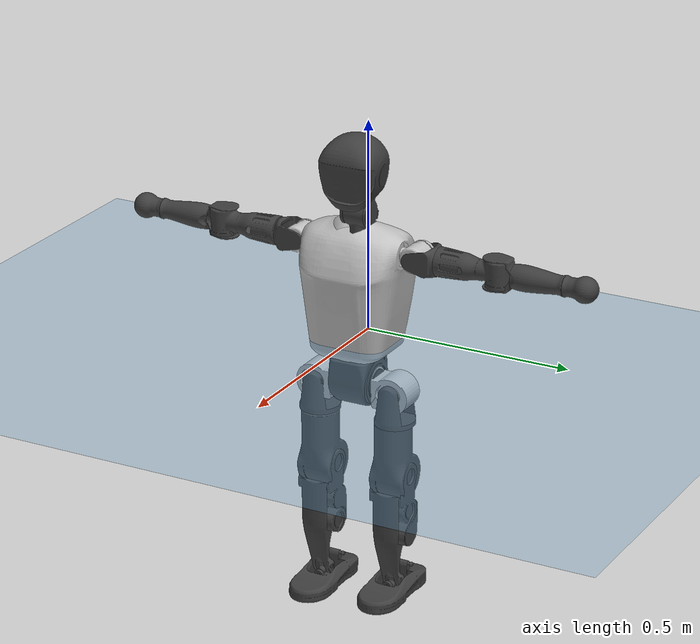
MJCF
<mujoco model="T1">
  <compiler angle="radian" assetdir="assets" balanceinertia="true" inertiafromgeom="false"/>

  <option timestep="0.005" density="1.2" viscosity="2e-05"/>

  <size nkey="1"/>

  <visual>
    <quality shadowsize="8192"/>
    <map shadowclip="0.5"/>
  </visual>

  <default>
    <default class="/">
      <joint armature="0.01" damping="0.01" frictionloss="0.1"/>
      <geom contype="0" conaffinity="0" group="1" solref="-1000 -80"/>
      <site size="0.01 0.005 0.005" group="5"/>
      <general forcelimited="true" biastype="affine" gainprm="25" biasprm="0 -25 -0.6"/>
      <default class="t1">
        <geom rgba="0.25 0.25 0.25 1"/>
        <default class="visual">
          <geom type="mesh" group="2"/>
        </default>
        <default class="collision">
          <geom group="3"/>
        </default>
        <default class="foot">
          <geom size="0.1115 0.05 0.015" type="box" condim="6" group="4" priority="1" solimp="0.015 1 0.015"/>
        </default>
        <default class="reward_collision_sphere">
          <geom group="5" rgba="1 0 0 1"/>
        </default>
      </default>
    </default>
  </default>

  <asset>
    <texture type="skybox" colorspace="auto" name="//unnamed_texture_0" builtin="gradient" rgb1="0.95 0.95 0.95" rgb2="0.95 0.95 0.95" width="100" height="600"/>
    <texture type="2d" colorspace="auto" name="texplane" builtin="checker" rgb1="0.345 0.575 0.748" rgb2="0.345 0.575 0.748" markrgb="1 1 1" width="512" height="512"/>
    <material name="MatPlane" class="/" texture="texplane" texuniform="true" texrepeat="2 2" specular="0.9"/>
    <mesh name="Trunk" class="/" file="Trunk.stl"/>
    <mesh name="H1" class="/" file="H1.stl"/>
    <mesh name="H2" class="/" file="H2.stl"/>
    <mesh name="AL1" class="/" file="AL1.stl"/>
    <mesh name="AL2" class="/" file="AL2.stl"/>
    <mesh name="AL3" class="/" file="AL3.stl"/>
    <mesh name="left_hand_link" class="/" file="left_hand_link.stl"/>
    <mesh name="AR1" class="/" file="AR1.stl"/>
    <mesh name="AR2" class="/" file="AR2.stl"/>
    <mesh name="AR3" class="/" file="AR3.stl"/>
    <mesh name="right_hand_link" class="/" file="right_hand_link.stl"/>
    <mesh name="Waist" class="/" file="Waist.stl"/>
    <mesh name="Hip_Pitch_Left" class="/" file="Hip_Pitch_Left.stl"/>
    <mesh name="Hip_Roll_Left" class="/" file="Hip_Roll_Left.stl"/>
    <mesh name="Hip_Yaw_Left" class="/" file="Hip_Yaw_Left.stl"/>
    <mesh name="Shank_Left" class="/" file="Shank_Left.stl"/>
    <mesh name="Ankle_Cross_Left" class="/" file="Ankle_Cross_Left.stl"/>
    <mesh name="left_foot_link" class="/" file="left_foot_link.stl"/>
    <mesh name="Hip_Pitch_Right" class="/" file="Hip_Pitch_Right.stl"/>
    <mesh name="Hip_Roll_Right" class="/" file="Hip_Roll_Right.stl"/>
    <mesh name="Hip_Yaw_Right" class="/" file="Hip_Yaw_Right.stl"/>
    <mesh name="Shank_Right" class="/" file="Shank_Right.stl"/>
    <mesh name="Ankle_Cross_Right" class="/" file="Ankle_Cross_Right.stl"/>
    <mesh name="right_foot_link" class="/" file="right_foot_link.stl"/>
  </asset>

  <worldbody>
    <geom name="floor" class="/" size="100 100 0.125" type="plane" group="0" material="MatPlane"/>
    <light name="toplight_shadow" class="/" pos="0 0 5" dir="0.0990148 0.0990148 -0.990148" type="directional" ambient="0.04 0.04 0.04" diffuse="0.55 0.55 0.55" specular="0.12 0.12 0.12"/>
    <light name="toplight_fill" class="/" pos="0 0 5" dir="0.0990148 0.0990148 -0.990148" type="directional" castshadow="false" ambient="0.04 0.04 0.04" diffuse="0.3 0.3 0.3" specular="0.08 0.08 0.08"/>
    <body name="trunk" childclass="t1" pos="-0.00134761 -0.00269315 0.00281345" quat="0.999999 0.0011032 0.000690842 6.87146e-05">
      <inertial pos="0.0355429 -0.000574438 0.103172" quat="0.999971 0.00052109 -0.00746211 -0.00113558" mass="7.3757" diaginertia="0.0124787 0.0551347 0.0499282"/>
      <joint name="//unnamed_joint_0" type="free" armature="0" damping="0" frictionloss="0"/>
      <geom name="//unnamed_geom_1" class="visual" rgba="0.76 0.76 0.76 1" mesh="Trunk"/>
      <geom name="//unnamed_geom_2" class="collision" size="0.0643184 0.0857578 0.128637" pos="0.0399708 0 0.116194" type="box"/>
      <geom name="//unnamed_geom_3" class="reward_collision_sphere" size="0.0986215" pos="0.0399708 0 0.0968283"/>
      <geom name="//unnamed_geom_4" class="reward_collision_sphere" size="0.0128637" pos="0.0399708 0.0797531 0"/>
      <geom name="//unnamed_geom_5" class="reward_collision_sphere" size="0.0128637" pos="0.0399708 -0.0797531 0"/>
      <geom name="//unnamed_geom_6" class="reward_collision_sphere" size="0.0128637" pos="0.0399708 0.100395 0.174291"/>
      <geom name="//unnamed_geom_7" class="reward_collision_sphere" size="0.0128637" pos="0.0399708 -0.100395 0.174291"/>
      <site name="imu" pos="0.0140683 -0.00125856 0.000379255" size="0.00857578"/>
      <camera name="track" pos="0 -1.87654 0" quat="0.707107 0.707107 0 0" mode="trackcom"/>
      <camera name="ego_camera" pos="0.081274 0 0.406679" quat="-0.5 -0.5 0.5 0.5"/>
      <body name="H1" pos="0.0436503 0.00241283 0.232207" quat="1 1.00631e-05 1.33333e-05 -8.38544e-06">
        <inertial pos="-0.00384268 -0.000177338 0.0584036" quat="0.767484 -0.015242 0.00753705 0.640842" mass="0.274489" diaginertia="3.03688e-05 0.000163184 0.000123416"/>
        <joint name="AAHead_yaw" pos="0 0 0" axis="0.00186605 -0.00158917 0.999997" stiffness="0.00273427" range="-1.60268 1.51459" armature="0.00729487" damping="0.0121492" frictionloss="0.0928978"/>
        <geom name="//unnamed_geom_8" class="visual" mesh="H1"/>
        <body name="H2" pos="0.000693641 -0.000226151 0.0623445" quat="1 1.01154e-05 -1.40282e-05 -0.000178257">
          <inertial pos="0.00423084 0.00102876 0.0959683" quat="0.989317 0.0987404 -0.0734428 -0.0781586" mass="0.389544" diaginertia="0.000251493 0.00137643 0.00145967"/>
          <joint name="Head_pitch" pos="0 0 0" axis="0.000153187 -0.999989 -0.0046669" range="-1.20289 0.330144" armature="0.0074989" damping="0.00862692" frictionloss="0.0852738"/>
          <geom name="//unnamed_geom_9" class="visual" mesh="H2"/>
          <geom name="//unnamed_geom_10" class="collision" size="0.0686062" pos="0.0066618 0 0.106511"/>
          <geom name="//unnamed_geom_11" class="reward_collision_sphere" size="0.077182" pos="0.0133236 0 0.0968283"/>
        </body>
      </body>
      <body name="AL1" pos="0.0393448 0.100415 0.211744" quat="1 -7.49404e-05 0.000491892 -0.000130478">
        <inertial pos="-0.00310159 0.041966 -0.000399492" quat="0.51138 0.491253 -0.499755 0.497399" mass="0.337265" diaginertia="0.000180149 0.000965382 0.00025764"/>
        <joint name="Left_Shoulder_Pitch" pos="0 0 0" axis="0.00710564 0.999901 0.0121134" stiffness="0.00185759" range="-3.29615 1.25187" armature="0.00857373" damping="0.0095267" frictionloss="0.0897115"/>
        <geom name="//unnamed_geom_12" class="visual" rgba="0.76 0.76 0.76 1" mesh="AL1"/>
        <body name="AL2" pos="0.00127239 0.0455496 -0.00189742" quat="1 4.60048e-06 9.16144e-05 -8.81566e-05">
          <inertial pos="0.00193326 0.0329995 5.89128e-05" quat="0.488348 0.509712 -0.488999 0.512434" mass="0.100287" diaginertia="5.20314e-05 0.00024874 0.000151524"/>
          <joint name="Left_Shoulder_Roll" pos="0 0 0" axis="-0.999987 -0.00151977 -0.00487786" range="-1.60828 1.79086" armature="0.00868264" damping="0.00855501" frictionloss="0.090284"/>
          <geom name="//unnamed_geom_13" class="visual" mesh="AL2"/>
          <body name="AL3" pos="0.00342268 0.056863 0.00272068" quat="0.999999 -0.00122377 0.000679975 -0.00050656">
            <inertial pos="-0.00242663 0.0792822 -3.56644e-05" quat="0.705354 0.708843 0.0017134 0.00370644" mass="0.667867" diaginertia="0.00173835 0.00905001 0.00052459"/>
            <joint name="Left_Elbow_Pitch" pos="0 0 0" axis="0.000500458 -0.999993 -0.00358628" range="-2.28438 2.27172" armature="0.0075741" damping="0.0132009" frictionloss="0.0889215"/>
            <geom name="//unnamed_geom_14" class="visual" mesh="AL3"/>
            <geom name="//unnamed_geom_15" class="collision" size="0.0257273 0.0643184" pos="0 0.0469136 0" quat="0.707105 0.707108 0 0" type="cylinder"/>
            <geom name="//unnamed_geom_16" class="reward_collision_sphere" size="0.0308728"/>
            <body name="left_hand_link" pos="-0.00153944 0.138562 -0.00116594" quat="0.999999 0.000994563 -0.000741478 8.96138e-05">
              <inertial pos="-0.000297947 0.10032 0.00322892" quat="0.714762 0.69934 -0.00135639 -0.00611902" mass="0.199566" diaginertia="0.001073 0.00577707 0.00017144"/>
              <joint name="Left_Elbow_Yaw" pos="0 0 0" axis="0.000883817 0.000353657 1" stiffness="0.0112994" range="-2.42441 -0.0230295" armature="0.00904059" damping="0.00921107" frictionloss="0.0834762"/>
              <geom name="//unnamed_geom_17" class="visual" mesh="left_hand_link"/>
              <geom name="//unnamed_geom_18" class="collision" size="0.0257273 0.0750381" pos="0 0.121975 0" quat="0.707105 0.707108 0 0" type="cylinder"/>
              <geom name="//unnamed_geom_19" class="reward_collision_sphere" size="0.0428789"/>
              <geom name="//unnamed_geom_20" class="reward_collision_sphere" size="0.0300152" pos="0 0.10321 0"/>
              <geom name="//unnamed_geom_21" class="reward_collision_sphere" size="0.0300152" pos="0 0.201728 0"/>
            </body>
          </body>
        </body>
      </body>
      <body name="AR1" pos="0.0401582 -0.101063 0.210173" quat="1 2.83713e-05 0.000199918 4.29075e-05">
        <inertial pos="-0.000928285 -0.0450346 0.00208741" quat="0.508306 0.493646 -0.503831 0.494058" mass="0.32424" diaginertia="0.000173955 0.000886555 0.000241223"/>
        <joint name="Right_Shoulder_Pitch" pos="0 0 0" axis="0.00641831 -0.999945 -0.00826083" stiffness="0.0085743" range="-1.16944 3.32549" armature="0.00897834" damping="0.00655728" frictionloss="0.0978014"/>
        <geom name="//unnamed_geom_22" class="visual" rgba="0.76 0.76 0.76 1" mesh="AR1"/>
        <body name="AR2" pos="-0.000347063 -0.0454535 -0.00104679" quat="0.999999 -0.000761946 0.000581762 -0.000526943">
          <inertial pos="-3.44363e-05 -0.0351896 -0.00199042" quat="0.506417 0.494505 -0.506408 0.492501" mass="0.102046" diaginertia="5.39876e-05 0.000257648 0.000150195"/>
          <joint name="Right_Shoulder_Roll" pos="0 0 0" axis="-0.999819 0.019008 -0.000849296" range="-1.72884 1.57776" armature="0.00759855" damping="0.0053353" frictionloss="0.0900791"/>
          <geom name="//unnamed_geom_23" class="visual" mesh="AR2"/>
          <body name="AR3" pos="0.000580322 -0.0596024 0.00214032" quat="0.999999 0.000730641 -0.000931915 -0.000665599">
            <inertial pos="0.00153347 -0.0810154 0.00268754" quat="0.708926 0.70528 -0.000768745 -0.00190908" mass="0.621964" diaginertia="0.00158196 0.0089733 0.000503021"/>
            <joint name="Right_Elbow_Pitch" pos="0 0 0" axis="2.92921e-05 1 0.000188232" range="-2.2603 2.25763" armature="0.00845789" damping="0.0105239" frictionloss="0.0929373"/>
            <geom name="//unnamed_geom_24" class="visual" mesh="AR3"/>
            <geom name="//unnamed_geom_25" class="collision" size="0.0257273 0.0643184" pos="0 -0.0469136 0" quat="0.707105 0.707108 0 0" type="cylinder"/>
            <geom name="//unnamed_geom_26" class="reward_collision_sphere" size="0.0308728"/>
            <body name="right_hand_link" pos="-0.00320272 -0.139204 -0.00141294" quat="1 -1.66785e-05 -2.31053e-06 -2.7585e-06">
              <inertial pos="-0.00026935 -0.102214 0.00150675" quat="0.706088 0.708123 0.000567446 0.000584655" mass="0.204422" diaginertia="0.00109841 0.00605437 0.000183571"/>
              <joint name="Right_Elbow_Yaw" pos="0 0 0" axis="0.00817509 -0.00222418 0.999964" stiffness="0.000945854" range="-0.00891753 2.43976" armature="0.00777722" damping="0.00571432" frictionloss="0.0959771"/>
              <geom name="//unnamed_geom_27" class="visual" mesh="right_hand_link"/>
              <geom name="//unnamed_geom_28" class="collision" size="0.0257273 0.0750381" pos="0 -0.121975 0" quat="0.707105 0.707108 0 0" type="cylinder"/>
              <geom name="//unnamed_geom_29" class="reward_collision_sphere" size="0.0428789"/>
              <geom name="//unnamed_geom_30" class="reward_collision_sphere" size="0.0300152" pos="0 -0.10321 0"/>
              <geom name="//unnamed_geom_31" class="reward_collision_sphere" size="0.0300152" pos="0 -0.201728 0"/>
            </body>
          </body>
        </body>
      </body>
      <body name="Waist" pos="0.040515 -0.00296638 -0.110495" quat="0.999999 0.00121088 3.01686e-05 -0.000749263">
        <inertial pos="-0.00109479 0.0022347 0.00442064" quat="0.984556 0.00954828 -0.174735 0.00502995" mass="1.56943" diaginertia="0.00070584 0.00381293 0.00402744"/>
        <joint name="Waist" pos="0 0 0" axis="-0.00349214 0.0121032 0.999921" stiffness="0.00686571" range="-1.56865 1.56522" armature="0.00860702" damping="0.0155458" frictionloss="0.0880624"/>
        <geom name="//unnamed_geom_32" class="visual" mesh="Waist"/>
        <body name="Hip_Pitch_Left" pos="-0.000818969 0.0962052 0.00139715" quat="1 7.00858e-06 0.000147407 7.70383e-05">
          <inertial pos="0.00301283 -0.00790286 -0.0178168" quat="0.974271 0.224774 0.00986654 0.0132169" mass="0.655806" diaginertia="0.000236426 0.00113248 0.00109515"/>
          <joint name="Left_Hip_Pitch" pos="0 0 0" axis="-0.00781596 0.999939 -0.00781335" stiffness="0.0134228" range="-1.77216 1.58349" armature="0.00958808" damping="0.00921783" frictionloss="0.0836678"/>
          <geom name="//unnamed_geom_33" class="visual" rgba="0.76 0.76 0.76 1" mesh="Hip_Pitch_Left"/>
          <body name="Hip_Roll_Left" pos="-0.00115104 -0.00247156 -0.0196404" quat="1 -0.000172048 7.52844e-05 -0.000205006">
            <inertial pos="0.000526611 -0.00193525 -0.053882" quat="0.706488 -0.00643423 -0.00586466 0.707672" mass="0.233187" diaginertia="0.000213556 0.00103689 0.000432447"/>
            <joint name="Left_Hip_Roll" pos="0 0 0" axis="-0.999964 -0.00606945 -0.00586919" range="-1.55551 0.245686" armature="0.00840291" damping="0.00445855" frictionloss="0.0978428"/>
            <geom name="//unnamed_geom_34" class="visual" mesh="Hip_Roll_Left"/>
            <geom name="//unnamed_geom_35" class="reward_collision_sphere" size="0.0471668"/>
            <body name="Hip_Yaw_Left" pos="0.00298846 -0.00291344 -0.0769295" quat="0.999999 -0.00114886 -0.000351357 -0.000369012">
              <inertial pos="-0.0052058 -0.000355063 -0.089341" quat="0.694643 -0.0360056 -0.0303283 0.717813" mass="1.35377" diaginertia="0.00326585 0.0180044 0.00214884"/>
              <joint name="Left_Hip_Yaw" pos="0 0 0" axis="0.00361253 0.0038419 -0.999986" range="-1.04323 1.02694" armature="0.00837357" damping="0.0104866" frictionloss="0.0875787"/>
              <geom name="//unnamed_geom_36" class="visual" mesh="Hip_Yaw_Left"/>
              <geom name="//unnamed_geom_37" class="collision" size="0.0428789 0.0686062" type="cylinder"/>
              <body name="Shank_Left" pos="-0.00696597 -0.000638868 -0.12832" quat="1 -3.26913e-05 0.000205105 0.000124129">
                <inertial pos="-0.00677123 0.000983818 -0.120972" quat="0.997937 -0.00101039 -0.0314283 0.0559739" mass="1.07981" diaginertia="0.00468129 0.0243404 0.00151774"/>
                <joint name="Left_Knee_Pitch" pos="0 0 0" axis="0.00244392 0.999991 -0.00359657" range="-0.00531996 2.28719" armature="0.00990781" damping="0" frictionloss="0.0882264"/>
                <geom name="//unnamed_geom_38" class="visual" mesh="Shank_Left"/>
                <geom name="//unnamed_geom_39" class="collision" size="0.0428789 0.0643184" pos="0 0 -0.116194" type="cylinder"/>
                <geom name="//unnamed_geom_40" class="reward_collision_sphere" size="0.0557426"/>
                <body name="Ankle_Cross_Left" pos="0.00268003 -0.000352586 -0.271246" quat="0.999999 0.000644225 -0.000848266 -0.00029218">
                  <inertial pos="-0.00409554 -0.000788109 -0.00546232" quat="0.443435 0.550996 0.551415 0.442392" mass="0.0457231" diaginertia="3.7123e-06 1.87423e-05 9.88423e-06"/>
                  <joint name="Left_Ankle_Pitch" pos="0 0 0" axis="-0.00162371 0.999998 0.00131473" range="-0.874224 0.3561" armature="0.00935382" damping="0.0220693" frictionloss="0.0835869"/>
                  <geom name="//unnamed_geom_41" class="visual" mesh="Ankle_Cross_Left"/>
                  <body name="left_foot_link" pos="-0.00190191 -0.00318366 -0.00947358" quat="1 0.000491013 0.000527846 0.000378536">
                    <inertial pos="-0.00300466 -0.00211367 -0.00778888" quat="0.00615118 0.621756 -0.0108067 0.783112" mass="0.442772" diaginertia="0.00035336 0.00172019 0.00192048"/>
                    <joint name="Left_Ankle_Roll" pos="0 0 0" axis="-0.999958 0.00597209 0.00696716" range="-0.430814 0.494038" armature="0.0086652" damping="0" frictionloss="0.0867496"/>
                    <geom name="//unnamed_geom_42" class="visual" mesh="left_foot_link"/>
                    <geom name="left_foot" class="foot" size="0.10797 0.0383428 0.0138094" pos="0.0066618 0 -0.0145242"/>
                    <geom name="//unnamed_geom_44" class="reward_collision_sphere" size="0.0445941" pos="0.0066618 0 -0.0145242"/>
                    <geom name="//unnamed_geom_45" class="reward_collision_sphere" size="0.0257273" pos="0.0632871 -0.0215802 -0.0145242"/>
                    <geom name="//unnamed_geom_46" class="reward_collision_sphere" size="0.0257273" pos="-0.0466326 -0.0215802 -0.0145242"/>
                    <site name="left_foot" class="foot" pos="0.0066618 0 -0.0145242" size="0.00857578"/>
                  </body>
                </body>
              </body>
            </body>
          </body>
        </body>
        <body name="Hip_Pitch_Right" pos="-0.00170823 -0.10181 0.000211924" quat="1 0.000116871 0.000288341 -0.00066693">
          <inertial pos="-0.00204269 0.00446152 -0.0180573" quat="0.973526 -0.228065 0.0149868 -0.00305696" mass="0.643213" diaginertia="0.000245401 0.00109947 0.00106551"/>
          <joint name="Right_Hip_Pitch" pos="0 0 0" axis="-0.00126221 -0.999997 -0.00221534" range="-1.56707 1.74382" armature="0.00802501" damping="0" frictionloss="0.0919057"/>
          <geom name="//unnamed_geom_47" class="visual" rgba="0.76 0.76 0.76 1" mesh="Hip_Pitch_Right"/>
          <body name="Hip_Roll_Right" pos="-0.00318436 -0.00133033 -0.0193835" quat="0.999999 0.00107657 -0.000870735 2.5225e-05">
            <inertial pos="-0.00174877 0.00049723 -0.0490991" quat="0.712879 0.00320627 -0.0115665 0.701184" mass="0.250515" diaginertia="0.000237991 0.00111127 0.000445027"/>
            <joint name="Right_Hip_Roll" pos="0 0 0" axis="-0.999995 0.00234067 -0.00217388" stiffness="0.00370336" range="-0.181928 1.56514" armature="0.00856954" damping="0.009387" frictionloss="0.0975599"/>
            <geom name="//unnamed_geom_48" class="visual" mesh="Hip_Roll_Right"/>
            <geom name="//unnamed_geom_49" class="reward_collision_sphere" size="0.0471668"/>
            <body name="Hip_Yaw_Right" pos="-0.000969765 -0.000218898 -0.0833258" quat="1 1.21577e-05 -5.72944e-05 6.38341e-05">
              <inertial pos="-0.00372805 -0.000526877 -0.0839753" quat="0.714348 -0.0316423 -0.0338565 0.698254" mass="1.39581" diaginertia="0.00351142 0.0186442 0.00228783"/>
              <joint name="Right_Hip_Yaw" pos="0 0 0" axis="0.00492842 -0.00267277 -0.999984" range="-1.01286 0.990308" armature="0.00815686" damping="0.0173238" frictionloss="0.0819033"/>
              <geom name="//unnamed_geom_50" class="visual" mesh="Hip_Yaw_Right"/>
              <geom name="//unnamed_geom_51" class="collision" size="0.0428789 0.0686062" type="cylinder"/>
              <body name="Shank_Right" pos="-0.0111844 -0.00142959 -0.132279" quat="1 -0.000171738 -0.000467219 8.6736e-05">
                <inertial pos="-0.00354092 -0.00297749 -0.11911" quat="0.99922 0.0123369 -0.0269316 -0.0261022" mass="1.17124" diaginertia="0.00456615 0.02548 0.00162537"/>
                <joint name="Right_Knee_Pitch" pos="0 0 0" axis="-0.00202852 -0.999976 0.00667221" range="-2.39044 0.00161079" armature="0.00861076" damping="0.00739317" frictionloss="0.0901513"/>
                <geom name="//unnamed_geom_52" class="visual" mesh="Shank_Right"/>
                <geom name="//unnamed_geom_53" class="collision" size="0.0428789 0.0643184" pos="0 0 -0.116194" type="cylinder"/>
                <geom name="//unnamed_geom_54" class="reward_collision_sphere" size="0.0557426"/>
                <body name="Ankle_Cross_Right" pos="-0.00131988 -0.000617768 -0.274643" quat="1 -2.31051e-05 8.07818e-05 -4.65929e-05">
                  <inertial pos="-0.00199897 0.0026666 -0.00788131" quat="0.443687 0.55106 0.550987 0.442592" mass="0.0443782" diaginertia="3.90946e-06 1.79653e-05 9.91881e-06"/>
                  <joint name="Right_Ankle_Pitch" pos="0 0 0" axis="0.00872391 -0.999921 -0.00907187" range="-0.298087 0.812738" armature="0.00856582" damping="0.0185127" frictionloss="0.087309"/>
                  <geom name="//unnamed_geom_55" class="visual" mesh="Ankle_Cross_Right"/>
                  <body name="right_foot_link" pos="0.00230328 0.00176747 -0.0145997" quat="1 9.00356e-05 0.000223104 5.62583e-05">
                    <inertial pos="-2.45573e-06 0.00264337 -0.0107004" quat="0.00739557 0.625224 0.0097839 0.780349" mass="0.413621" diaginertia="0.000342238 0.00170679 0.00177568"/>
                    <joint name="Right_Ankle_Roll" pos="0 0 0" axis="-0.999995 0.00194296 0.00236244" range="-0.494933 0.486353" armature="0.00797964" damping="0.00292339" frictionloss="0.0977035"/>
                    <geom name="//unnamed_geom_56" class="visual" mesh="right_foot_link"/>
                    <geom name="right_foot" class="foot" size="0.098664 0.0382811 0.0140199" pos="0.0066618 0 -0.0145242"/>
                    <geom name="//unnamed_geom_58" class="reward_collision_sphere" size="0.0343031"/>
                    <geom name="//unnamed_geom_59" class="reward_collision_sphere" size="0.0257273" pos="0.0066618 0 -0.0145242"/>
                    <geom name="//unnamed_geom_60" class="reward_collision_sphere" size="0.0257273" pos="0.0632871 0.0215802 -0.0145242"/>
                    <geom name="//unnamed_geom_61" class="reward_collision_sphere" size="0.0257273" pos="-0.0466326 0.0215802 -0.0145242"/>
                    <site name="right_foot" class="foot" pos="0.0066618 0 -0.0145242" size="0.00857578"/>
                  </body>
                </body>
              </body>
            </body>
          </body>
        </body>
      </body>
    </body>
  </worldbody>

  <contact>
    <pair class="/" geom1="floor" geom2="left_foot" name="//unnamed_contact_0"/>
    <pair class="/" geom1="floor" geom2="right_foot" name="//unnamed_contact_1"/>
  </contact>

  <actuator>
    <general name="AAHead_yaw" class="/" joint="AAHead_yaw" forcerange="-5.91228 5.91228" gainprm="20.4004" biasprm="0 -20.4004 -0.534324"/>
    <general name="Head_pitch" class="/" joint="Head_pitch" forcerange="-6.01232 6.01232" gainprm="20.4004" biasprm="0 -20.4004 -0.534324"/>
    <general name="Left_Shoulder_Pitch" class="/" joint="Left_Shoulder_Pitch" forcerange="-14.4062 14.4062" gainprm="20.4004" biasprm="0 -20.4004 -0.534324"/>
    <general name="Left_Shoulder_Roll" class="/" joint="Left_Shoulder_Roll" forcerange="-13.8625 13.8625" gainprm="20.4004" biasprm="0 -20.4004 -0.534324"/>
    <general name="Left_Elbow_Pitch" class="/" joint="Left_Elbow_Pitch" forcerange="-17.0685 17.0685" gainprm="20.4004" biasprm="0 -20.4004 -0.534324"/>
    <general name="Left_Elbow_Yaw" class="/" joint="Left_Elbow_Yaw" forcerange="-15.2738 15.2738" gainprm="20.4004" biasprm="0 -20.4004 -0.534324"/>
    <general name="Right_Shoulder_Pitch" class="/" joint="Right_Shoulder_Pitch" forcerange="-15.8315 15.8315" gainprm="20.4004" biasprm="0 -20.4004 -0.534324"/>
    <general name="Right_Shoulder_Roll" class="/" joint="Right_Shoulder_Roll" forcerange="-17.0531 17.0531" gainprm="20.4004" biasprm="0 -20.4004 -0.534324"/>
    <general name="Right_Elbow_Pitch" class="/" joint="Right_Elbow_Pitch" forcerange="-15.0664 15.0664" gainprm="20.4004" biasprm="0 -20.4004 -0.534324"/>
    <general name="Right_Elbow_Yaw" class="/" joint="Right_Elbow_Yaw" forcerange="-15.269 15.269" gainprm="20.4004" biasprm="0 -20.4004 -0.534324"/>
    <general name="Waist" class="/" joint="Waist" forcerange="-23.1637 23.1637" gainprm="20.4004" biasprm="0 -20.4004 -0.534324"/>
    <general name="Left_Hip_Pitch" class="/" joint="Left_Hip_Pitch" forcerange="-36.9121 36.9121" gainprm="20.4004" biasprm="0 -20.4004 -0.534324"/>
    <general name="Left_Hip_Roll" class="/" joint="Left_Hip_Roll" forcerange="-26.9162 26.9162" gainprm="20.4004" biasprm="0 -20.4004 -0.534324"/>
    <general name="Left_Hip_Yaw" class="/" joint="Left_Hip_Yaw" forcerange="-23.4097 23.4097" gainprm="20.4004" biasprm="0 -20.4004 -0.534324"/>
    <general name="Left_Knee_Pitch" class="/" joint="Left_Knee_Pitch" forcerange="-50.2057 50.2057" gainprm="20.4004" biasprm="0 -20.4004 -0.534324"/>
    <general name="Left_Ankle_Pitch" class="/" joint="Left_Ankle_Pitch" forcerange="-17.0702 17.0702" gainprm="20.4004" biasprm="0 -20.4004 -0.534324"/>
    <general name="Left_Ankle_Roll" class="/" joint="Left_Ankle_Roll" forcerange="-13.2241 13.2241" gainprm="20.4004" biasprm="0 -20.4004 -0.534324"/>
    <general name="Right_Hip_Pitch" class="/" joint="Right_Hip_Pitch" forcerange="-42.361 42.361" gainprm="20.4004" biasprm="0 -20.4004 -0.534324"/>
    <general name="Right_Hip_Roll" class="/" joint="Right_Hip_Roll" forcerange="-27.5014 27.5014" gainprm="20.4004" biasprm="0 -20.4004 -0.534324"/>
    <general name="Right_Hip_Yaw" class="/" joint="Right_Hip_Yaw" forcerange="-25.2699 25.2699" gainprm="20.4004" biasprm="0 -20.4004 -0.534324"/>
    <general name="Right_Knee_Pitch" class="/" joint="Right_Knee_Pitch" forcerange="-55.5809 55.5809" gainprm="20.4004" biasprm="0 -20.4004 -0.534324"/>
    <general name="Right_Ankle_Pitch" class="/" joint="Right_Ankle_Pitch" forcerange="-15.8851 15.8851" gainprm="20.4004" biasprm="0 -20.4004 -0.534324"/>
    <general name="Right_Ankle_Roll" class="/" joint="Right_Ankle_Roll" forcerange="-14.2193 14.2193" gainprm="20.4004" biasprm="0 -20.4004 -0.534324"/>
  </actuator>

  <sensor>
    <gyro site="imu" name="imu_angular_velocity"/>
    <velocimeter site="imu" name="imu_linear_velocity"/>
    <framelinvel objtype="site" objname="left_foot" name="left_foot_global_linear_velocity"/>
    <framelinvel objtype="site" objname="right_foot" name="right_foot_global_linear_velocity"/>
  </sensor>

  <keyframe>
    <key name="home" qpos="0 0 0.6385 1 0 0 0 0 0 0 1.4 0 -0.4 0 -1.4 0 0.4 0 -0.4 0 0 0.8 -0.4 0 0.4 0 0 -0.8 0.4 0"/>
  </keyframe>
</mujoco>
